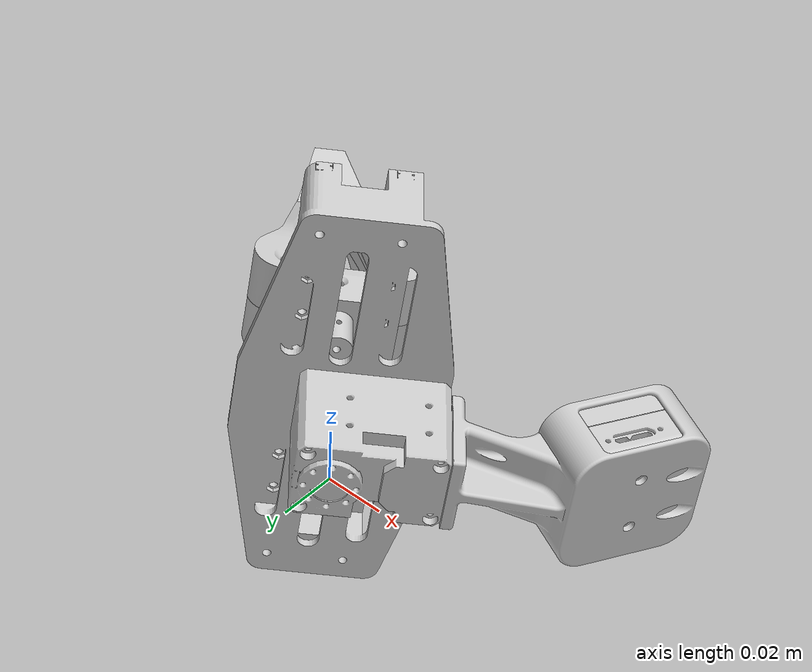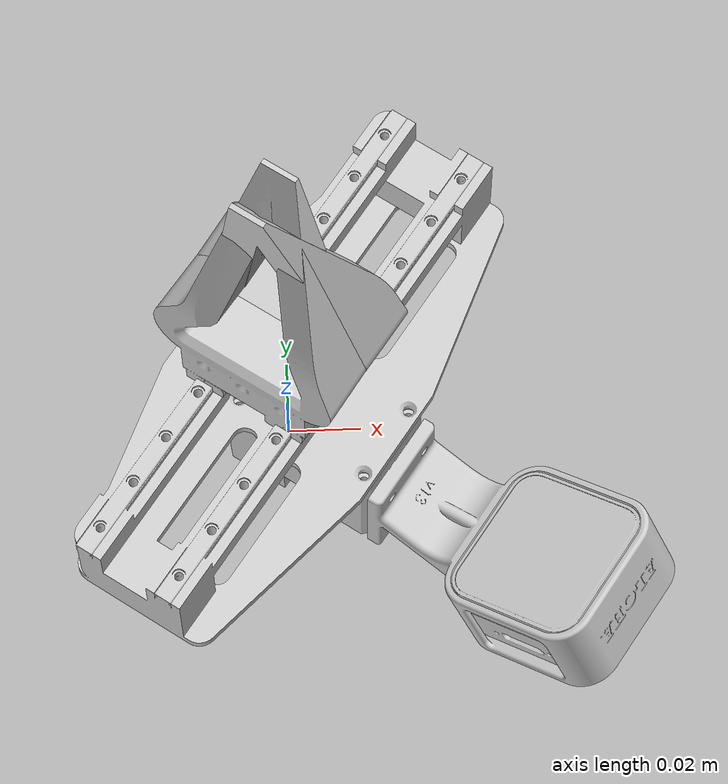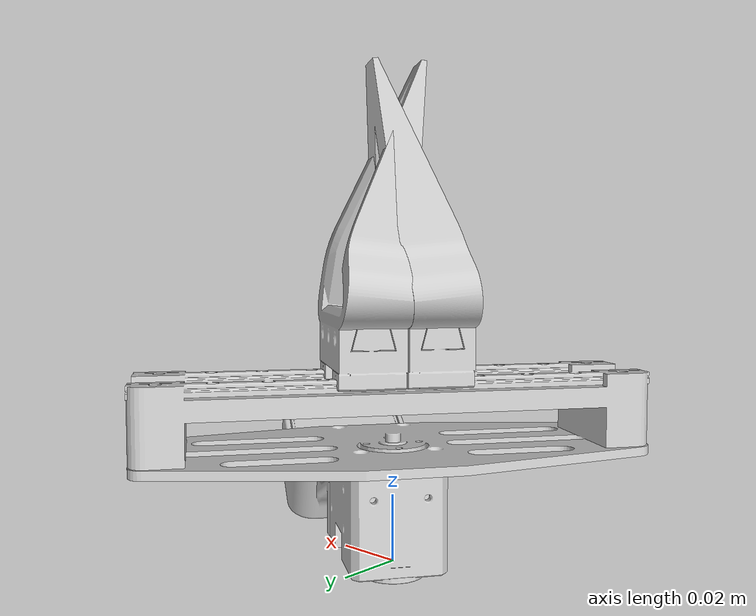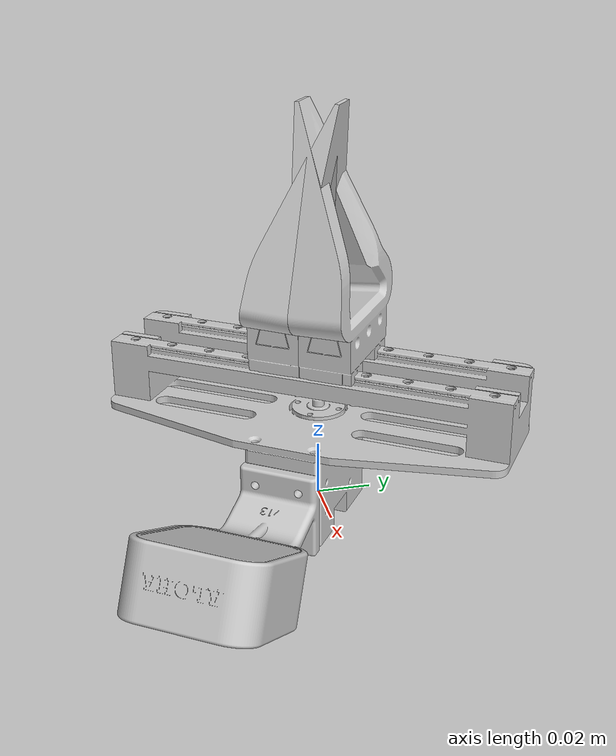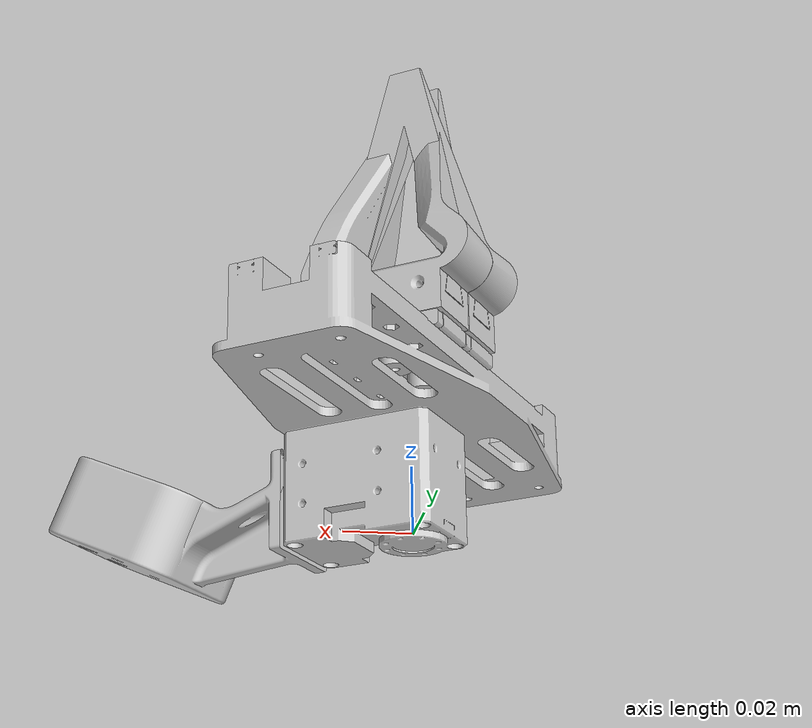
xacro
<?xml version="1.0"?>
<robot name="aloha_gripper" xmlns:xacro="http://ros.org/wiki/xacro">
  <xacro:include filename="$(find aloha4franka_description)/urdf/aloha_gripper_base.urdf.xacro" />
  <xacro:include filename="$(find aloha4franka_description)/urdf/aloha_trigger_and_gripper.ros2_control.urdf.xacro" />

  <xacro:arg name="device" default="/dev/ttyUSB0" />

  <link name="world"/>

  <xacro:aloha_gripper_base parent="world">
    <origin xyz="0 0 0" rpy="0 0 -3.7524578918" />
  </xacro:aloha_gripper_base>

  <link name="trigger_link"/>

  <joint type="revolute" name="trigger_joint">
      <parent link="gripper_base"/>
      <child link="trigger_link"/>
      <limit lower="0.0" upper="0.5" effort="20" velocity="0.1"/>
  </joint>

  <xacro:aloha_trigger_and_gripper_ros2_control name="aloha_trigger_and_gripper_ros2_control" use_dummy="false" device="$(arg device)"/>
</robot>

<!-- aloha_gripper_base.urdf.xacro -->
<robot name="aloha_gripper" xmlns:xacro="http://ros.org/wiki/xacro">

   <xacro:macro name="aloha_gripper_base" params="parent *origin">

      <joint name="parent_to_attachment" type="fixed">
         <xacro:insert_block name="origin" />
         <parent link="${parent}" />
         <child link="attachment" />
      </joint>

      <link name="attachment"/>

      <link name="gripper_link"/>

      <link name="gripper_base">
         <inertial>
            <origin xyz="0.000182154 -0.0341589 -0.0106026" rpy="-3.1268397102679626 -1.3396653758560313 -1.5724951022968918"/>
            <mass value="0.42158"/>
            <inertia ixx="0.00110438" iyy="0.000790537" izz="0.000469727" ixy="0" ixz="0" iyz="0"/>
         </inertial>
         <visual name="vx300s_7_gripper_prop">
            <origin xyz="-7.125005908006766e-05 -0.013972358350213673 -0.019796292065912522" rpy="1.4985074113212404 0.0021362621112541724 -0.008566170054856768"/>
            <geometry>
               <mesh filename="package://aloha4franka_description/meshes/converted_vx300s_7_gripper_prop.stl"/>
            </geometry>
            <material name="black"/>
         </visual>
         <visual name="vx300s_7_gripper_prop">
            <origin xyz="-7.125005908006766e-05 -0.013972358350213673 -0.019796292065912522" rpy="1.4985074113212404 0.0021362621112541724 -0.008566170054856768"/>
            <geometry>
               <mesh filename="package://aloha4franka_description/meshes/converted_vx300s_7_gripper_prop.stl"/>
            </geometry>
            <material name="black"/>
         </visual>
         <visual name="vx300s_7_gripper_bar">
            <origin xyz="-5.148798931076239e-06 -0.0012717260758070548 0.007756579647115751" rpy="-1.5706066660360418 -1.46865254637527 -1.5709833450490993"/>
            <geometry>
               <mesh filename="package://aloha4franka_description/meshes/converted_vx300s_7_gripper_bar.stl"/>
            </geometry>
            <material name="black"/>
         </visual>
         <visual name="vx300s_7_gripper_bar">
            <origin xyz="-5.148798931076239e-06 -0.0012717260758070548 0.007756579647115751" rpy="-1.5706066660360418 -1.46865254637527 -1.5709833450490993"/>
            <geometry>
               <mesh filename="package://aloha4franka_description/meshes/converted_vx300s_7_gripper_bar.stl"/>
            </geometry>
            <material name="black"/>
         </visual>
         <visual name="vx300s_7_gripper_wrist_mount">
            <origin xyz="0.0014119511047979876 -0.07831753130868538 -0.022168533283077805" rpy="-3.019164925189655 -1.429607269967897 1.4762192896780637"/>
            <geometry>
               <mesh filename="package://aloha4franka_description/meshes/converted_vx300s_7_gripper_wrist_mount.stl"/>
            </geometry>
            <material name="black"/>
         </visual>
         <visual name="vx300s_7_gripper_wrist_mount">
            <origin xyz="0.0014119511047979876 -0.07831753130868538 -0.022168533283077805" rpy="-3.019164925189655 -1.429607269967897 1.4762192896780637"/>
            <geometry>
               <mesh filename="package://aloha4franka_description/meshes/converted_vx300s_7_gripper_wrist_mount.stl"/>
            </geometry>
            <material name="black"/>
         </visual>
         <visual name="d405_solid">
            <origin xyz="-5.836344222936565e-05 -0.08718568798944683 -0.01968153770820399" rpy="-1.576636669864431 -1.1344553039639118 1.5772404426174749"/>
            <geometry>
               <mesh filename="package://aloha4franka_description/meshes/converted_d405_solid.stl"/>
            </geometry>
            <material name="black"/>
         </visual>
         <visual name="d405_solid">
            <origin xyz="-5.836344222936565e-05 -0.08718568798944683 -0.01968153770820399" rpy="-1.576636669864431 -1.1344553039639118 1.5772404426174749"/>
            <geometry>
               <mesh filename="package://aloha4franka_description/meshes/converted_d405_solid.stl"/>
            </geometry>
            <material name="black"/>
         </visual>
      </link>

      <link name="left_finger_link">
         <inertial>
            <origin xyz="0.0143478 -0.0284791 0.0122897" rpy="-0.011573354767406091 -1.3965703878578868 1.6029721721609531"/>
            <mass value="0.0862937"/>
            <inertia ixx="5.86848e-05" iyy="4.46887e-05" izz="1.8397e-05" ixy="0" ixz="0" iyz="0"/>
         </inertial>
         <visual name="vx300s_8_custom_finger_left">
            <origin xyz="0.014151207245583969 -0.024703850412821925 0.011904345293832289" rpy="0.0379174039254158 1.4009467475622346 -1.5244944453812614"/>
            <geometry>
               <mesh filename="package://aloha4franka_description/meshes/converted_vx300s_8_custom_finger_left.stl"/>
            </geometry>
            <material name="black"/>
         </visual>
         <visual name="vx300s_8_custom_finger_left">
            <origin xyz="0.014151207245583969 -0.024703850412821925 0.011904345293832289" rpy="0.0379174039254158 1.4009467475622346 -1.5244944453812614"/>
            <geometry>
               <mesh filename="package://aloha4franka_description/meshes/converted_vx300s_8_custom_finger_left.stl"/>
            </geometry>
            <material name="black"/>
         </visual>
      </link>

      <link name="left_finger_jointbody">
         <inertial>
            <origin xyz="0.0 0.0 0.0" rpy="0.0 0.0 0.0"/>
            <mass value="0.001"/>
            <inertia ixx="1e-09" iyy="1e-09" izz="1e-09" ixy="0" ixz="0" iyz="0"/>
         </inertial>
      </link>

      <link name="right_finger_link">
         <inertial>
            <origin xyz="0.0143711 0.0284792 0.0121421" rpy="3.0989441310943913 -1.396605188954987 -1.549515216221901"/>
            <mass value="0.0862932"/>
            <inertia ixx="5.86828e-05" iyy="4.46887e-05" izz="1.83949e-05" ixy="0" ixz="0" iyz="0"/>
         </inertial>
         <visual name="vx300s_8_custom_finger_right">
            <origin xyz="0.014171508741995985 0.024709705349883485 0.01175902479016041" rpy="-0.019945856009376067 -1.4010662170956578 -1.5599421646571336"/>
            <geometry>
               <mesh filename="package://aloha4franka_description/meshes/converted_vx300s_8_custom_finger_right.stl"/>
            </geometry>
            <material name="black"/>
         </visual>
         <visual name="vx300s_8_custom_finger_right">
            <origin xyz="0.014171508741995985 0.024709705349883485 0.01175902479016041" rpy="-0.019945856009376067 -1.4010662170956578 -1.5599421646571336"/>
            <geometry>
               <mesh filename="package://aloha4franka_description/meshes/converted_vx300s_8_custom_finger_right.stl"/>
            </geometry>
            <material name="black"/>
         </visual>
      </link>

      <link name="right_finger_jointbody">
         <inertial>
            <origin xyz="0.0 0.0 0.0" rpy="0.0 0.0 0.0"/>
            <mass value="0.001"/>
            <inertia ixx="1e-09" iyy="1e-09" izz="1e-09" ixy="0" ixz="0" iyz="0"/>
         </inertial>
      </link>

      <!-- Joints -->
      <joint type="fixed" name="gripper_to_attachment">
         <parent link="attachment"/>
         <child link="gripper_link"/>
         <origin xyz="0.0 0.0 0.0" rpy="0.0 -1.570796326 0.0"/>
      </joint>

      <joint type="fixed" name="gripper_link2/gripper_base_fixed">
         <parent link="gripper_link"/>
         <child link="gripper_base"/>
         <origin xyz="0.035 0.0 0.0" rpy="-1.5699999997475103 0.000796326542406689 -1.5707956926584654"/>
      </joint>

      <joint type="prismatic" name="left_finger_joint">
         <parent link="gripper_base"/>
         <child link="left_finger_jointbody"/>
         <origin xyz="0.0191 -0.0141637 0.0211727" rpy="-1.5707963267948966 0.0 1.5707963267948966"/>
         <axis xyz="0 0 -1"/>
         <limit lower="0.0" upper="0.041" effort="20" velocity="0.1"/>
      </joint>

      <joint type="fixed" name="left_finger_offset">
         <parent link="left_finger_jointbody"/>
         <child link="left_finger_link"/>
         <origin xyz="-0.0 -0.0 -0.0" rpy="0.0 0.0 0.0"/>
      </joint>

      <joint type="prismatic" name="right_finger_joint">
         <parent link="gripper_base"/>
         <child link="right_finger_jointbody"/>
         <origin xyz="-0.0191 -0.0141637 0.0211727" rpy="1.5707963267948966 0.0 1.5707963267948966"/>
         <axis xyz="0 0 -1"/>
         <mimic joint="left_finger_joint" multiplier="1.0" offset="0.0"/>
         <limit lower="-100.0" upper="100.0" effort="20" velocity="0.1"/>
      </joint>

      <joint type="fixed" name="right_finger_offset">
         <parent link="right_finger_jointbody"/>
         <child link="right_finger_link"/>
         <origin xyz="-0.0 -0.0 -0.0" rpy="0.0 0.0 0.0"/>
      </joint>

      <material name="black">
         <color rgba="0.8 0.8 0.8 1"/>
      </material>
   </xacro:macro>
</robot>
